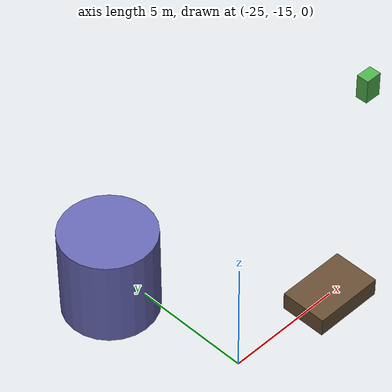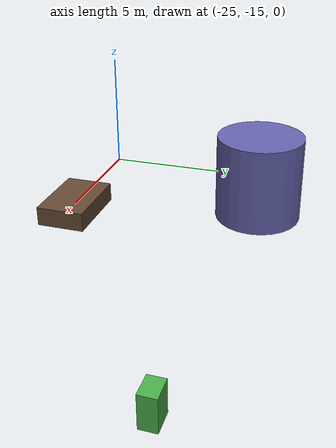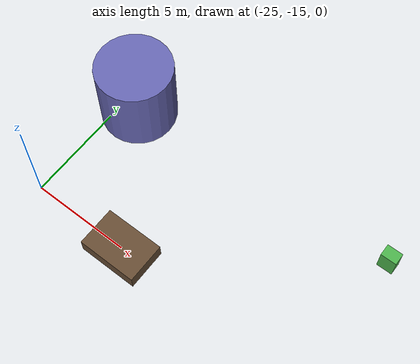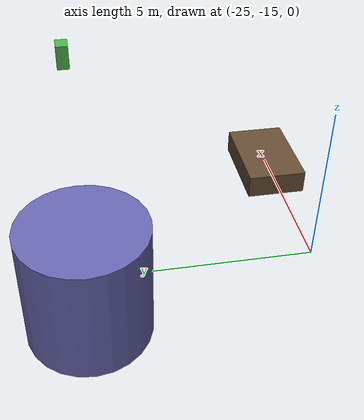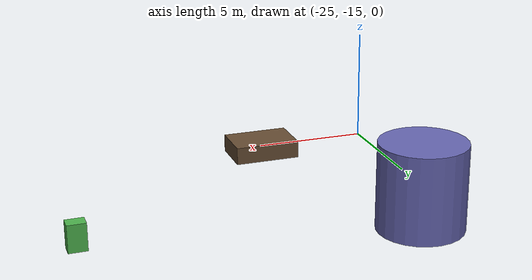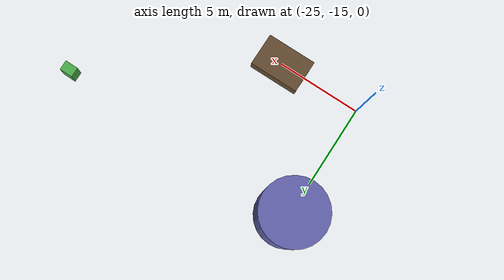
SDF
<sdf version="1.8">
 <world name="realistic_vineyard_world">
  <model name="water_tank">
   <static>true</static>
   <pose>-25 -8 0 0 0 0</pose>
   <link name="tank_link">
    <collision name="tank_collision">
     <geometry><cylinder><radius>2</radius><length>4</length></cylinder></geometry>
    </collision>
    <visual name="tank_visual">
     <geometry><cylinder><radius>2</radius><length>4</length></cylinder></geometry>
     <material>
      <ambient>0.3 0.3 0.5 1</ambient>
      <diffuse>0.4 0.4 0.7 1</diffuse>
      <specular>0.2 0.2 0.3 1</specular>
     </material>
    </visual>
   </link>
  </model>
  <model name="compost_pile">
   <static>true</static>
   <pose>-20 -15 0 0 0 0</pose>
   <link name="compost_link">
    <collision name="compost_collision"><geometry><box><size>3 2 0.8</size></box></geometry></collision>
    <visual name="compost_visual">
     <geometry><box><size>3 2 0.8</size></box></geometry>
     <material><ambient>0.3 0.2 0.1 1</ambient><diffuse>0.4 0.3 0.2 1</diffuse></material>
    </visual>
   </link>
  </model>
  <model name="irrigation_control">
   <static>true</static>
   <pose>-10 -8 0 0 0 0</pose>
   <link name="control_box">
    <collision name="box_collision"><geometry><box><size>0.8 0.6 1.2</size></box></geometry></collision>
    <visual name="box_visual">
     <geometry><box><size>0.8 0.6 1.2</size></box></geometry>
     <material><ambient>0.2 0.5 0.2 1</ambient><diffuse>0.3 0.7 0.3 1</diffuse></material>
    </visual>
   </link>
  </model>
 </world>
</sdf>
